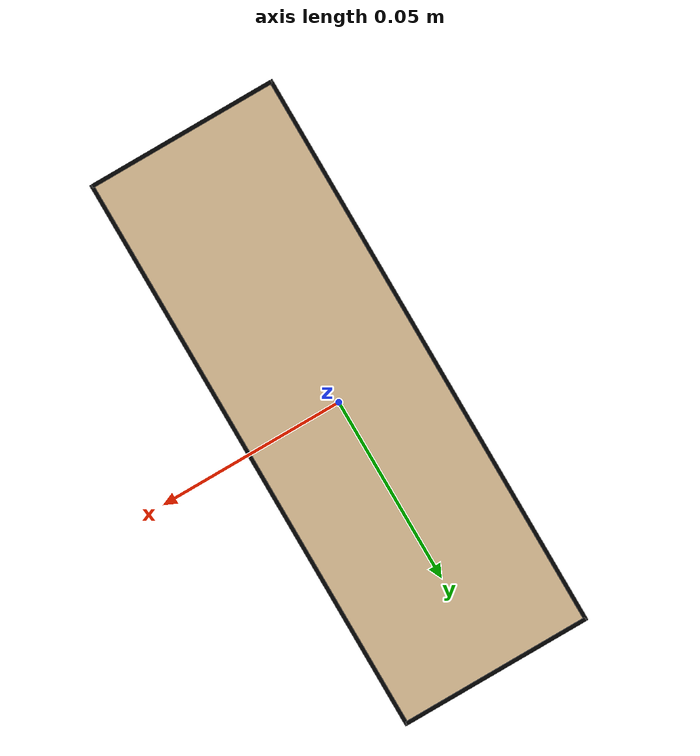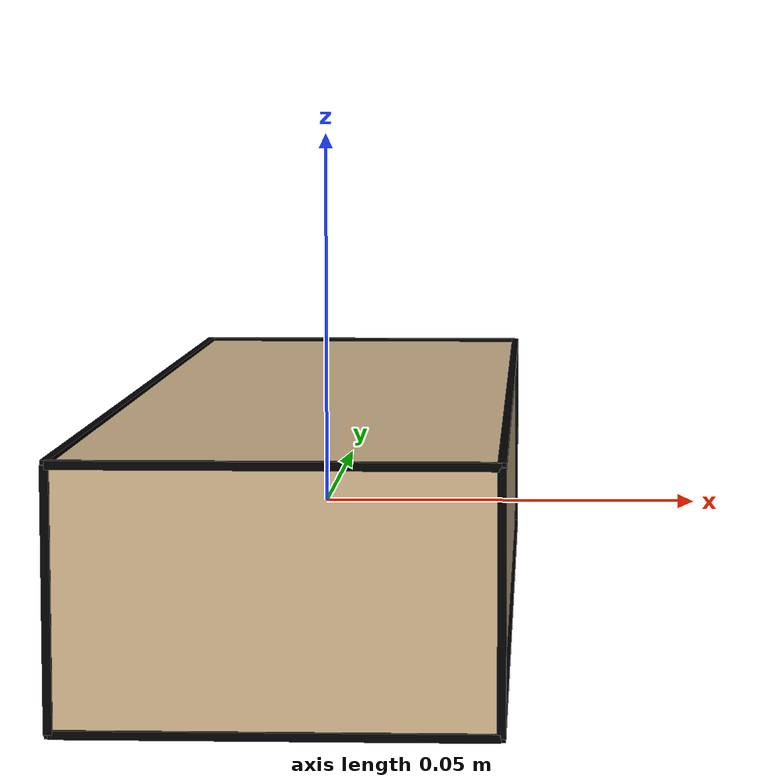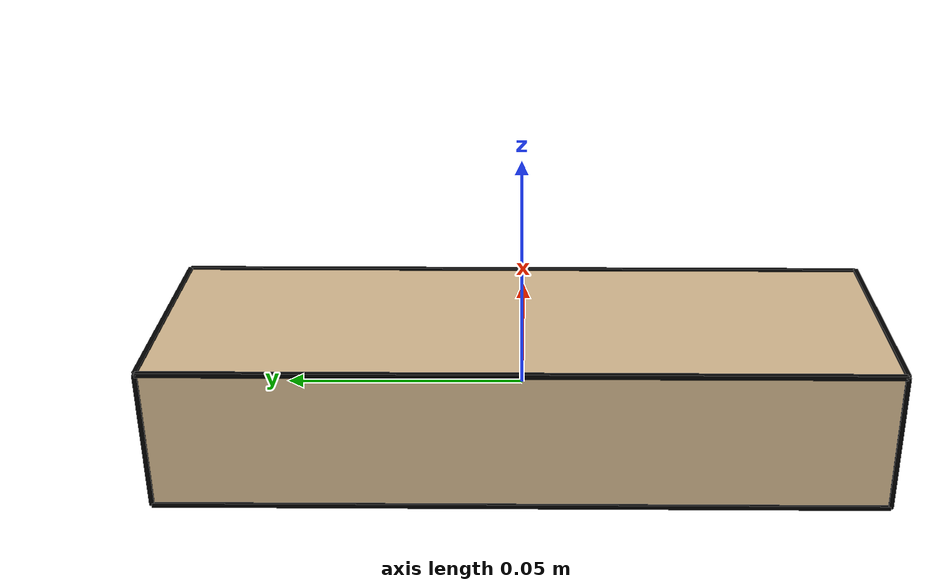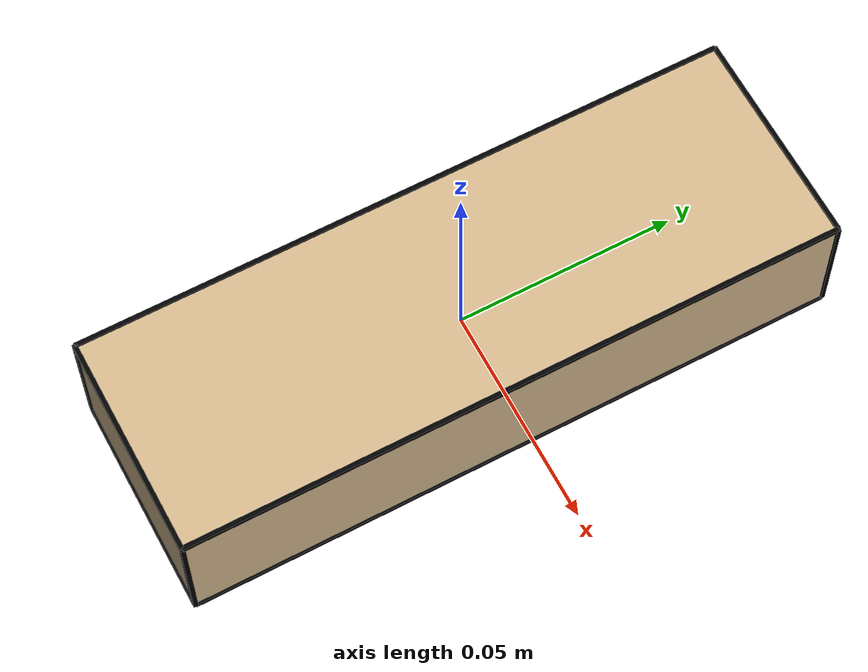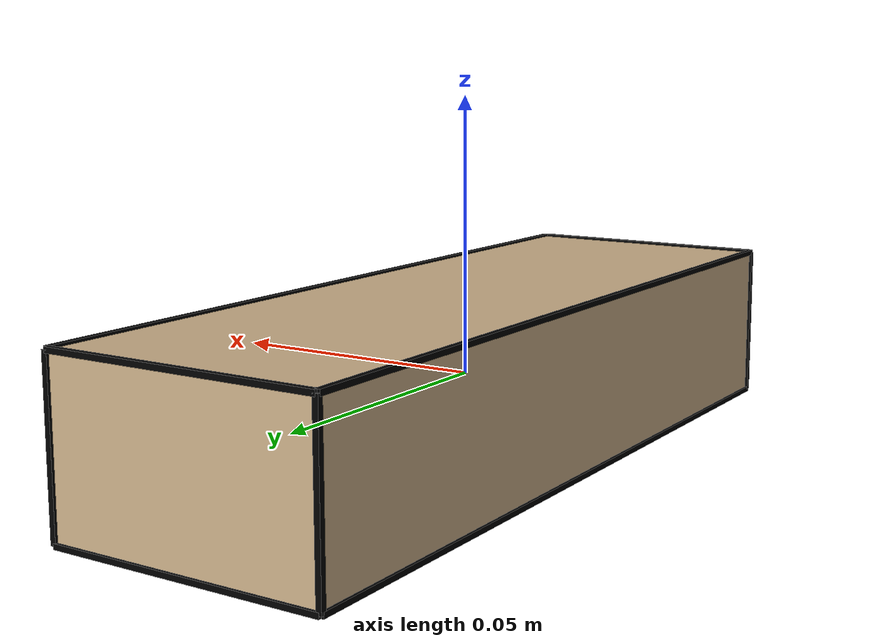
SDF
<?xml version="1.0"?>
<sdf version="1.7">
  <model name="jenga_block">
    <link name="jenga_block_link">
      <inertial>
        <mass>0.160</mass>
        <inertia>
          <ixx>0.000312</ixx>
          <ixy>0</ixy>
          <ixz>0</ixz>
          <iyy>0.0000453</iyy>
          <iyz>0</iyz>
          <izz>0.000333</izz>
        </inertia>
      </inertial>
      <visual name="block">
        <geometry>
          <box>
            <size>0.05 0.15 0.03</size>
          </box>
        </geometry>
        <material>
          <diffuse>0.82 0.71 0.55 1.0</diffuse>
        </material>
      </visual>
      <collision name="block">
        <geometry>
          <box>
            <size>0.05 0.15 0.03</size>
          </box>
        </geometry>
        <drake:proximity_properties>
          <drake:compliant_hydroelastic/>f
          <drake:hydroelastic_modulus>1.0e16</drake:hydroelastic_modulus>
        </drake:proximity_properties>
      </collision>

      <!-- Adding thin black lines as boxes around each edge -->
      <!-- Top edges -->
      <visual name="top_front_edge">
        <geometry>
          <box>
            <size>0.05 0.001 0.001</size>
          </box>
        </geometry>
        <material>
          <diffuse>0 0 0 1</diffuse>
        </material>
        <pose>0 0.075 0.015 0 0 0</pose>
      </visual>
      <visual name="top_back_edge">
        <geometry>
          <box>
            <size>0.05 0.001 0.001</size>
          </box>
        </geometry>
        <material>
          <diffuse>0 0 0 1</diffuse>
        </material>
        <pose>0 -0.075 0.015 0 0 0</pose>
      </visual>
      <visual name="top_left_edge">
        <geometry>
          <box>
            <size>0.001 0.15 0.001</size>
          </box>
        </geometry>
        <material>
          <diffuse>0 0 0 1</diffuse>
        </material>
        <pose>-0.025 0 0.015 0 0 0</pose>
      </visual>
      <visual name="top_right_edge">
        <geometry>
          <box>
            <size>0.001 0.15 0.001</size>
          </box>
        </geometry>
        <material>
          <diffuse>0 0 0 1</diffuse>
        </material>
        <pose>0.025 0 0.015 0 0 0</pose>
      </visual>

      <!-- Bottom edges -->
      <visual name="bottom_front_edge">
        <geometry>
          <box>
            <size>0.05 0.001 0.001</size>
          </box>
        </geometry>
        <material>
          <diffuse>0 0 0 1</diffuse>
        </material>
        <pose>0 0.075 -0.015 0 0 0</pose>
      </visual>
      <visual name="bottom_back_edge">
        <geometry>
          <box>
            <size>0.05 0.001 0.001</size>
          </box>
        </geometry>
        <material>
          <diffuse>0 0 0 1</diffuse>
        </material>
        <pose>0 -0.075 -0.015 0 0 0</pose>
      </visual>
      <visual name="bottom_left_edge">
        <geometry>
          <box>
            <size>0.001 0.15 0.001</size>
          </box>
        </geometry>
        <material>
          <diffuse>0 0 0 1</diffuse>
        </material>
        <pose>-0.025 0 -0.015 0 0 0</pose>
      </visual>
      <visual name="bottom_right_edge">
        <geometry>
          <box>
            <size>0.001 0.15 0.001</size>
          </box>
        </geometry>
        <material>
          <diffuse>0 0 0 1</diffuse>
        </material>
        <pose>0.025 0 -0.015 0 0 0</pose>
      </visual>

      <!-- Side edges -->
      <visual name="front_left_edge">
        <geometry>
          <box>
            <size>0.001 0.001 0.03</size>
          </box>
        </geometry>
        <material>
          <diffuse>0 0 0 1</diffuse>
        </material>
        <pose>-0.025 0.075 0 0 0 0</pose>
      </visual>
      <visual name="front_right_edge">
        <geometry>
          <box>
            <size>0.001 0.001 0.03</size>
          </box>
        </geometry>
        <material>
          <diffuse>0 0 0 1</diffuse>
        </material>
        <pose>0.025 0.075 0 0 0 0</pose>
      </visual>
      <visual name="back_left_edge">
        <geometry>
          <box>
            <size>0.001 0.001 0.03</size>
          </box>
        </geometry>
        <material>
          <diffuse>0 0 0 1</diffuse>
        </material>
        <pose>-0.025 -0.075 0 0 0 0</pose>
      </visual>
      <visual name="back_right_edge">
        <geometry>
          <box>
            <size>0.001 0.001 0.03</size>
          </box>
        </geometry>
        <material>
          <diffuse>0 0 0 1</diffuse>
        </material>
        <pose>0.025 -0.075 0 0 0 0</pose>
      </visual>
    </link>
    <frame name="jenga_block_center">
      <pose relative_to="jenga_block_link">0 0 -0.015 0 0 0</pose>
    </frame>
  </model>
</sdf>
